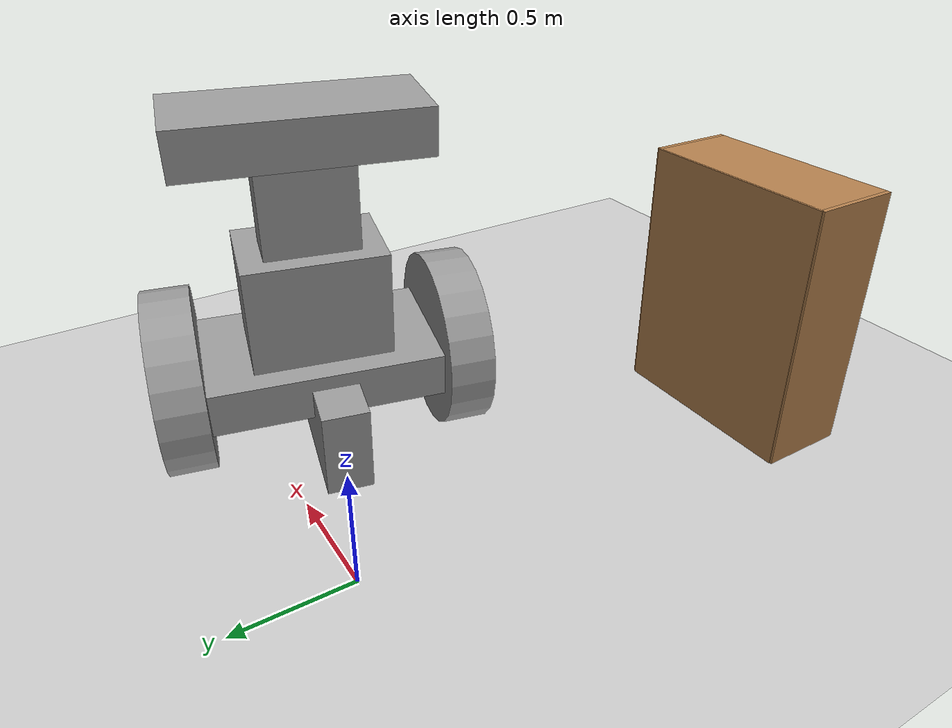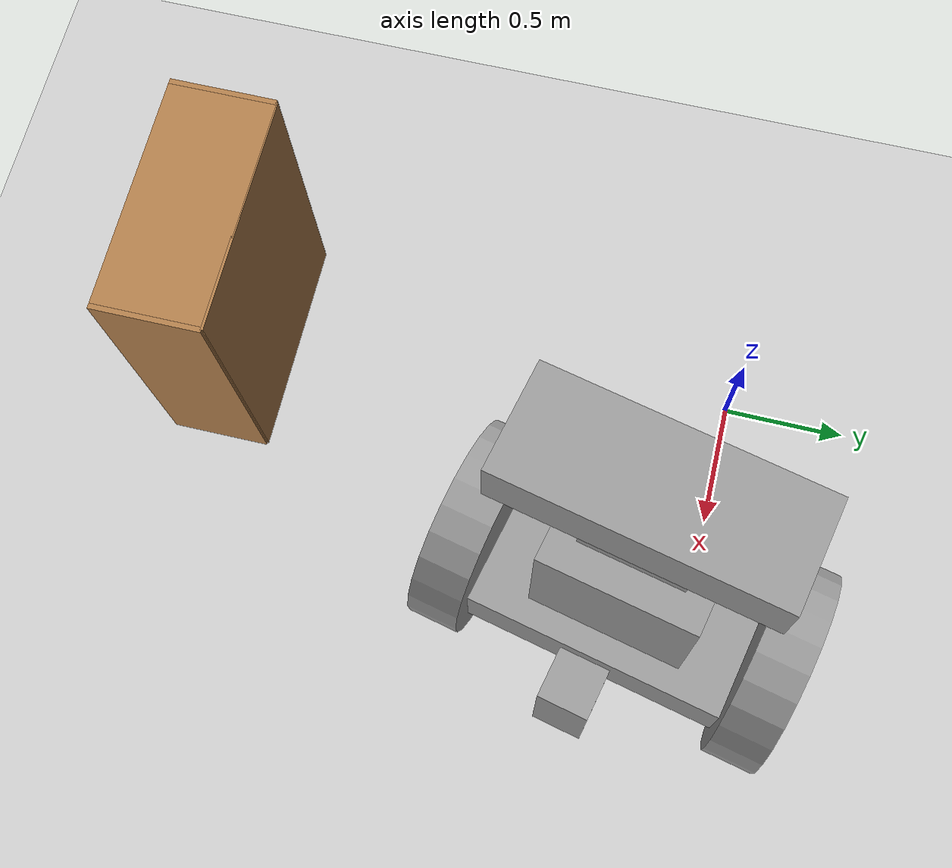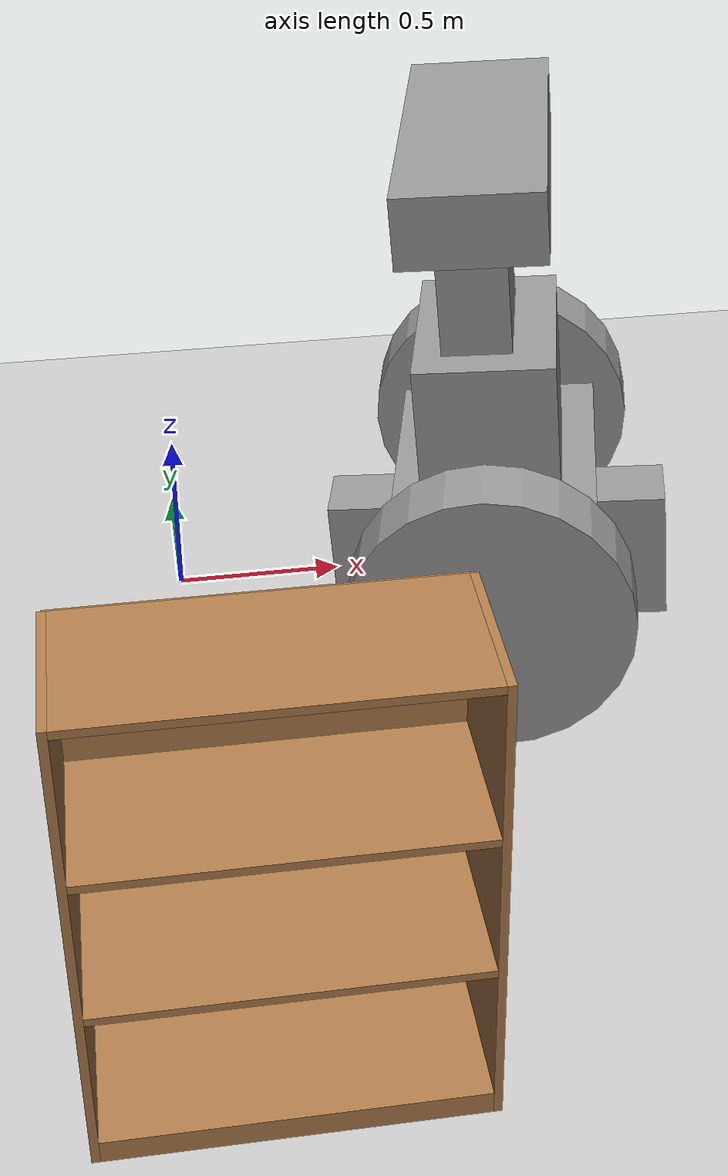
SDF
<sdf version="1.6">
 <world name="default">
  <model name="ground_plane">
   <static>1</static>
   <link name="link">
    <collision name="collision">
     <geometry><plane><normal>0 0 1</normal><size>100 100</size></plane></geometry>
     <surface>
      <contact><collide_bitmask>65535</collide_bitmask></contact>
      <friction><ode><mu>100</mu><mu2>50</mu2></ode></friction>
     </surface>
    </collision>
    <visual name="visual">
     <cast_shadows>0</cast_shadows>
     <geometry><plane><normal>0 0 1</normal><size>100 100</size></plane></geometry>
     <material>
      <script><uri>file://media/materials/scripts/gazebo.material</uri><name>Gazebo/Grey</name></script>
     </material>
    </visual>
   </link>
  </model>
  <model name="robo1_0">
   <link name="link_0">
    <pose>0.431648 -0.223766 0.4 0 -0 0</pose>
    <inertial>
     <mass>1</mass>
     <inertia>
      <ixx>0.166667</ixx>
      <ixy>0</ixy>
      <ixz>0</ixz>
      <iyy>0.166667</iyy>
      <iyz>0</iyz>
      <izz>0.166667</izz>
     </inertia>
    </inertial>
    <visual name="visual">
     <geometry><box><size>0.6 1 0.2</size></box></geometry>
     <material>
      <lighting>1</lighting>
      <script><uri>file://media/materials/scripts/gazebo.material</uri><name>Gazebo/Grey</name></script>
      <shader type="pixel"><normal_map>__default__</normal_map></shader>
      <ambient>0.3 0.3 0.3 1</ambient>
      <diffuse>0.7 0.7 0.7 1</diffuse>
      <specular>0.01 0.01 0.01 1</specular>
      <emissive>0 0 0 1</emissive>
     </material>
    </visual>
    <collision name="collision">
     <geometry><box><size>0.6 1 0.2</size></box></geometry>
     <surface>
      <friction>
       <ode><mu>1</mu><mu2>1</mu2><fdir1>0 0 0</fdir1><slip1>0</slip1><slip2>0</slip2></ode>
       <torsional>
        <coefficient>1</coefficient>
        <patch_radius>0</patch_radius>
        <surface_radius>0</surface_radius>
        <use_patch_radius>1</use_patch_radius>
        <ode><slip>0</slip></ode>
       </torsional>
      </friction>
      <bounce><restitution_coefficient>0</restitution_coefficient><threshold>1e+06</threshold></bounce>
      <contact>
       <collide_without_contact>0</collide_without_contact>
       <collide_without_contact_bitmask>1</collide_without_contact_bitmask>
       <collide_bitmask>1</collide_bitmask>
       <ode>
        <soft_cfm>0</soft_cfm>
        <soft_erp>0.2</soft_erp>
        <kp>1e+13</kp>
        <kd>1</kd>
        <max_vel>0.01</max_vel>
        <min_depth>0</min_depth>
       </ode>
       <bullet>
        <split_impulse>1</split_impulse>
        <split_impulse_penetration_threshold>-0.01</split_impulse_penetration_threshold>
        <soft_cfm>0</soft_cfm>
        <soft_erp>0.2</soft_erp>
        <kp>1e+13</kp>
        <kd>1</kd>
       </bullet>
      </contact>
     </surface>
    </collision>
   </link>
   <link name="link_10">
    <pose>0.431648 -0.223766 1.47714 0 -0 0</pose>
    <inertial>
     <mass>1</mass>
     <inertia>
      <ixx>0.166667</ixx>
      <ixy>0</ixy>
      <ixz>0</ixz>
      <iyy>0.166667</iyy>
      <iyz>0</iyz>
      <izz>0.166667</izz>
     </inertia>
    </inertial>
    <visual name="visual">
     <geometry><box><size>0.4 1 0.2</size></box></geometry>
     <material>
      <lighting>1</lighting>
      <script><uri>file://media/materials/scripts/gazebo.material</uri><name>Gazebo/Grey</name></script>
      <shader type="pixel"><normal_map>__default__</normal_map></shader>
      <ambient>0.3 0.3 0.3 1</ambient>
      <diffuse>0.7 0.7 0.7 1</diffuse>
      <specular>0.01 0.01 0.01 1</specular>
      <emissive>0 0 0 1</emissive>
     </material>
    </visual>
    <collision name="collision">
     <geometry><box><size>0.4 1 0.2</size></box></geometry>
     <surface>
      <friction>
       <ode><mu>1</mu><mu2>1</mu2><fdir1>0 0 0</fdir1><slip1>0</slip1><slip2>0</slip2></ode>
       <torsional>
        <coefficient>1</coefficient>
        <patch_radius>0</patch_radius>
        <surface_radius>0</surface_radius>
        <use_patch_radius>1</use_patch_radius>
        <ode><slip>0</slip></ode>
       </torsional>
      </friction>
      <bounce><restitution_coefficient>0</restitution_coefficient><threshold>1e+06</threshold></bounce>
      <contact>
       <collide_without_contact>0</collide_without_contact>
       <collide_without_contact_bitmask>1</collide_without_contact_bitmask>
       <collide_bitmask>1</collide_bitmask>
       <ode>
        <soft_cfm>0</soft_cfm>
        <soft_erp>0.2</soft_erp>
        <kp>1e+13</kp>
        <kd>1</kd>
        <max_vel>0.01</max_vel>
        <min_depth>0</min_depth>
       </ode>
       <bullet>
        <split_impulse>1</split_impulse>
        <split_impulse_penetration_threshold>-0.01</split_impulse_penetration_threshold>
        <soft_cfm>0</soft_cfm>
        <soft_erp>0.2</soft_erp>
        <kp>1e+13</kp>
        <kd>1</kd>
       </bullet>
      </contact>
     </surface>
    </collision>
   </link>
   <link name="link_2">
    <pose>0.431648 -0.823804 0.4 1.5707 -0 0</pose>
    <inertial>
     <mass>1</mass>
     <inertia><ixx>0.145833</ixx><ixy>0</ixy><ixz>0</ixz><iyy>0.145833</iyy><iyz>0</iyz><izz>0.125</izz></inertia>
    </inertial>
    <visual name="visual">
     <geometry><cylinder><radius>0.4</radius><length>0.2</length></cylinder></geometry>
     <material>
      <lighting>1</lighting>
      <script><uri>file://media/materials/scripts/gazebo.material</uri><name>Gazebo/Grey</name></script>
      <shader type="pixel"><normal_map>__default__</normal_map></shader>
      <ambient>0.3 0.3 0.3 1</ambient>
      <diffuse>0.7 0.7 0.7 1</diffuse>
      <specular>0.01 0.01 0.01 1</specular>
      <emissive>0 0 0 1</emissive>
     </material>
    </visual>
    <collision name="collision">
     <geometry><cylinder><radius>0.4</radius><length>0.2</length></cylinder></geometry>
     <surface>
      <friction>
       <ode><mu>1</mu><mu2>1</mu2><fdir1>0 0 0</fdir1><slip1>0</slip1><slip2>0</slip2></ode>
       <torsional>
        <coefficient>1</coefficient>
        <patch_radius>0</patch_radius>
        <surface_radius>0</surface_radius>
        <use_patch_radius>1</use_patch_radius>
        <ode><slip>0</slip></ode>
       </torsional>
      </friction>
      <bounce><restitution_coefficient>0</restitution_coefficient><threshold>1e+06</threshold></bounce>
      <contact>
       <collide_without_contact>0</collide_without_contact>
       <collide_without_contact_bitmask>1</collide_without_contact_bitmask>
       <collide_bitmask>1</collide_bitmask>
       <ode>
        <soft_cfm>0</soft_cfm>
        <soft_erp>0.2</soft_erp>
        <kp>1e+13</kp>
        <kd>1</kd>
        <max_vel>0.01</max_vel>
        <min_depth>0</min_depth>
       </ode>
       <bullet>
        <split_impulse>1</split_impulse>
        <split_impulse_penetration_threshold>-0.01</split_impulse_penetration_threshold>
        <soft_cfm>0</soft_cfm>
        <soft_erp>0.2</soft_erp>
        <kp>1e+13</kp>
        <kd>1</kd>
       </bullet>
      </contact>
     </surface>
    </collision>
   </link>
   <link name="link_2_clone">
    <pose>0.431648 0.376273 0.4 1.5707 -0 0</pose>
    <inertial>
     <mass>1</mass>
     <inertia><ixx>0.145833</ixx><ixy>0</ixy><ixz>0</ixz><iyy>0.145833</iyy><iyz>0</iyz><izz>0.125</izz></inertia>
    </inertial>
    <visual name="visual">
     <geometry><cylinder><radius>0.4</radius><length>0.2</length></cylinder></geometry>
     <material>
      <lighting>1</lighting>
      <script><uri>file://media/materials/scripts/gazebo.material</uri><name>Gazebo/Grey</name></script>
      <shader type="pixel"><normal_map>__default__</normal_map></shader>
      <ambient>0.3 0.3 0.3 1</ambient>
      <diffuse>0.7 0.7 0.7 1</diffuse>
      <specular>0.01 0.01 0.01 1</specular>
      <emissive>0 0 0 1</emissive>
     </material>
    </visual>
    <collision name="collision">
     <geometry><cylinder><radius>0.4</radius><length>0.2</length></cylinder></geometry>
     <surface>
      <friction>
       <ode><mu>1</mu><mu2>1</mu2><fdir1>0 0 0</fdir1><slip1>0</slip1><slip2>0</slip2></ode>
       <torsional>
        <coefficient>1</coefficient>
        <patch_radius>0</patch_radius>
        <surface_radius>0</surface_radius>
        <use_patch_radius>1</use_patch_radius>
        <ode><slip>0</slip></ode>
       </torsional>
      </friction>
      <bounce><restitution_coefficient>0</restitution_coefficient><threshold>1e+06</threshold></bounce>
      <contact>
       <collide_without_contact>0</collide_without_contact>
       <collide_without_contact_bitmask>1</collide_without_contact_bitmask>
       <collide_bitmask>1</collide_bitmask>
       <ode>
        <soft_cfm>0</soft_cfm>
        <soft_erp>0.2</soft_erp>
        <kp>1e+13</kp>
        <kd>1</kd>
        <max_vel>0.01</max_vel>
        <min_depth>0</min_depth>
       </ode>
       <bullet>
        <split_impulse>1</split_impulse>
        <split_impulse_penetration_threshold>-0.01</split_impulse_penetration_threshold>
        <soft_cfm>0</soft_cfm>
        <soft_erp>0.2</soft_erp>
        <kp>1e+13</kp>
        <kd>1</kd>
       </bullet>
      </contact>
     </surface>
    </collision>
   </link>
   <link name="link_4">
    <pose>0.431648 -0.243766 0.237143 0 -0 0</pose>
    <inertial>
     <mass>1</mass>
     <inertia>
      <ixx>0.166667</ixx>
      <ixy>0</ixy>
      <ixz>0</ixz>
      <iyy>0.166667</iyy>
      <iyz>0</iyz>
      <izz>0.166667</izz>
     </inertia>
    </inertial>
    <visual name="visual">
     <geometry><box><size>1 0.2 0.4</size></box></geometry>
     <material>
      <lighting>1</lighting>
      <script><uri>file://media/materials/scripts/gazebo.material</uri><name>Gazebo/Grey</name></script>
      <shader type="pixel"><normal_map>__default__</normal_map></shader>
      <ambient>0.3 0.3 0.3 1</ambient>
      <diffuse>0.7 0.7 0.7 1</diffuse>
      <specular>0.01 0.01 0.01 1</specular>
      <emissive>0 0 0 1</emissive>
     </material>
    </visual>
    <collision name="collision">
     <geometry><box><size>1 0.2 0.4</size></box></geometry>
     <surface>
      <friction>
       <ode><mu>1</mu><mu2>1</mu2><fdir1>0 0 0</fdir1><slip1>0</slip1><slip2>0</slip2></ode>
       <torsional>
        <coefficient>1</coefficient>
        <patch_radius>0</patch_radius>
        <surface_radius>0</surface_radius>
        <use_patch_radius>1</use_patch_radius>
        <ode><slip>0</slip></ode>
       </torsional>
      </friction>
      <bounce><restitution_coefficient>0</restitution_coefficient><threshold>1e+06</threshold></bounce>
      <contact>
       <collide_without_contact>0</collide_without_contact>
       <collide_without_contact_bitmask>1</collide_without_contact_bitmask>
       <collide_bitmask>1</collide_bitmask>
       <ode>
        <soft_cfm>0</soft_cfm>
        <soft_erp>0.2</soft_erp>
        <kp>1e+13</kp>
        <kd>1</kd>
        <max_vel>0.01</max_vel>
        <min_depth>0</min_depth>
       </ode>
       <bullet>
        <split_impulse>1</split_impulse>
        <split_impulse_penetration_threshold>-0.01</split_impulse_penetration_threshold>
        <soft_cfm>0</soft_cfm>
        <soft_erp>0.2</soft_erp>
        <kp>1e+13</kp>
        <kd>1</kd>
       </bullet>
      </contact>
     </surface>
    </collision>
   </link>
   <link name="link_6">
    <pose>0.431648 -0.223766 0.677143 0 -0 0</pose>
    <inertial>
     <mass>1</mass>
     <inertia>
      <ixx>0.166667</ixx>
      <ixy>0</ixy>
      <ixz>0</ixz>
      <iyy>0.166667</iyy>
      <iyz>0</iyz>
      <izz>0.166667</izz>
     </inertia>
    </inertial>
    <visual name="visual">
     <geometry><box><size>0.4 0.6 0.6</size></box></geometry>
     <material>
      <lighting>1</lighting>
      <script><uri>file://media/materials/scripts/gazebo.material</uri><name>Gazebo/Grey</name></script>
      <shader type="pixel"><normal_map>__default__</normal_map></shader>
      <ambient>0.3 0.3 0.3 1</ambient>
      <diffuse>0.7 0.7 0.7 1</diffuse>
      <specular>0.01 0.01 0.01 1</specular>
      <emissive>0 0 0 1</emissive>
     </material>
    </visual>
    <collision name="collision">
     <geometry><box><size>0.4 0.6 0.6</size></box></geometry>
     <surface>
      <friction>
       <ode><mu>1</mu><mu2>1</mu2><fdir1>0 0 0</fdir1><slip1>0</slip1><slip2>0</slip2></ode>
       <torsional>
        <coefficient>1</coefficient>
        <patch_radius>0</patch_radius>
        <surface_radius>0</surface_radius>
        <use_patch_radius>1</use_patch_radius>
        <ode><slip>0</slip></ode>
       </torsional>
      </friction>
      <bounce><restitution_coefficient>0</restitution_coefficient><threshold>1e+06</threshold></bounce>
      <contact>
       <collide_without_contact>0</collide_without_contact>
       <collide_without_contact_bitmask>1</collide_without_contact_bitmask>
       <collide_bitmask>1</collide_bitmask>
       <ode>
        <soft_cfm>0</soft_cfm>
        <soft_erp>0.2</soft_erp>
        <kp>1e+13</kp>
        <kd>1</kd>
        <max_vel>0.01</max_vel>
        <min_depth>0</min_depth>
       </ode>
       <bullet>
        <split_impulse>1</split_impulse>
        <split_impulse_penetration_threshold>-0.01</split_impulse_penetration_threshold>
        <soft_cfm>0</soft_cfm>
        <soft_erp>0.2</soft_erp>
        <kp>1e+13</kp>
        <kd>1</kd>
       </bullet>
      </contact>
     </surface>
    </collision>
   </link>
   <link name="link_8">
    <pose>0.411648 -0.223766 1.17714 0 -0 0</pose>
    <inertial>
     <mass>1</mass>
     <inertia>
      <ixx>0.166667</ixx>
      <ixy>0</ixy>
      <ixz>0</ixz>
      <iyy>0.166667</iyy>
      <iyz>0</iyz>
      <izz>0.166667</izz>
     </inertia>
    </inertial>
    <visual name="visual">
     <geometry><box><size>0.2 0.4 0.4</size></box></geometry>
     <material>
      <lighting>1</lighting>
      <script><uri>file://media/materials/scripts/gazebo.material</uri><name>Gazebo/Grey</name></script>
      <shader type="pixel"><normal_map>__default__</normal_map></shader>
      <ambient>0.3 0.3 0.3 1</ambient>
      <diffuse>0.7 0.7 0.7 1</diffuse>
      <specular>0.01 0.01 0.01 1</specular>
      <emissive>0 0 0 1</emissive>
     </material>
    </visual>
    <collision name="collision">
     <geometry><box><size>0.2 0.4 0.4</size></box></geometry>
     <surface>
      <friction>
       <ode><mu>1</mu><mu2>1</mu2><fdir1>0 0 0</fdir1><slip1>0</slip1><slip2>0</slip2></ode>
       <torsional>
        <coefficient>1</coefficient>
        <patch_radius>0</patch_radius>
        <surface_radius>0</surface_radius>
        <use_patch_radius>1</use_patch_radius>
        <ode><slip>0</slip></ode>
       </torsional>
      </friction>
      <bounce><restitution_coefficient>0</restitution_coefficient><threshold>1e+06</threshold></bounce>
      <contact>
       <collide_without_contact>0</collide_without_contact>
       <collide_without_contact_bitmask>1</collide_without_contact_bitmask>
       <collide_bitmask>1</collide_bitmask>
       <ode>
        <soft_cfm>0</soft_cfm>
        <soft_erp>0.2</soft_erp>
        <kp>1e+13</kp>
        <kd>1</kd>
        <max_vel>0.01</max_vel>
        <min_depth>0</min_depth>
       </ode>
       <bullet>
        <split_impulse>1</split_impulse>
        <split_impulse_penetration_threshold>-0.01</split_impulse_penetration_threshold>
        <soft_cfm>0</soft_cfm>
        <soft_erp>0.2</soft_erp>
        <kp>1e+13</kp>
        <kd>1</kd>
       </bullet>
      </contact>
     </surface>
    </collision>
   </link>
   <joint name="link_0_JOINT_0_0" type="fixed">
    <parent>link_0</parent>
    <child>link_4</child>
    <physics>
     <ode><limit><cfm>0</cfm><erp>0.2</erp></limit><suspension><cfm>0</cfm><erp>0.2</erp></suspension></ode>
    </physics>
   </joint>
   <joint name="link_0_JOINT_0" type="revolute">
    <parent>link_0</parent>
    <child>link_2</child>
    <axis>
     <xyz>0 0 1</xyz>
     <use_parent_model_frame>0</use_parent_model_frame>
     <limit>
      <lower>-1.79769e+308</lower>
      <upper>1.79769e+308</upper>
      <effort>-1</effort>
      <velocity>-1</velocity>
     </limit>
     <dynamics>
      <spring_reference>0</spring_reference>
      <spring_stiffness>0</spring_stiffness>
      <damping>0</damping>
      <friction>0</friction>
     </dynamics>
    </axis>
    <physics>
     <ode><limit><cfm>0</cfm><erp>0.2</erp></limit><suspension><cfm>0</cfm><erp>0.2</erp></suspension></ode>
    </physics>
   </joint>
   <joint name="link_0_JOINT_1" type="revolute">
    <parent>link_0</parent>
    <child>link_2_clone</child>
    <axis>
     <xyz>0 0 1</xyz>
     <use_parent_model_frame>0</use_parent_model_frame>
     <limit>
      <lower>-1.79769e+308</lower>
      <upper>1.79769e+308</upper>
      <effort>-1</effort>
      <velocity>-1</velocity>
     </limit>
     <dynamics>
      <spring_reference>0</spring_reference>
      <spring_stiffness>0</spring_stiffness>
      <damping>0</damping>
      <friction>0</friction>
     </dynamics>
    </axis>
    <physics>
     <ode><limit><cfm>0</cfm><erp>0.2</erp></limit><suspension><cfm>0</cfm><erp>0.2</erp></suspension></ode>
    </physics>
   </joint>
   <joint name="link_0_JOINT_2" type="fixed">
    <parent>link_0</parent>
    <child>link_4</child>
    <physics>
     <ode><limit><cfm>0</cfm><erp>0.2</erp></limit><suspension><cfm>0</cfm><erp>0.2</erp></suspension></ode>
    </physics>
   </joint>
   <joint name="link_0_JOINT_3" type="fixed">
    <parent>link_0</parent>
    <child>link_6</child>
    <physics>
     <ode><limit><cfm>0</cfm><erp>0.2</erp></limit><suspension><cfm>0</cfm><erp>0.2</erp></suspension></ode>
    </physics>
   </joint>
   <joint name="link_6_JOINT_4" type="fixed">
    <parent>link_6</parent>
    <child>link_8</child>
    <physics>
     <ode><limit><cfm>0</cfm><erp>0.2</erp></limit><suspension><cfm>0</cfm><erp>0.2</erp></suspension></ode>
    </physics>
   </joint>
   <joint name="link_8_JOINT_5" type="fixed">
    <parent>link_8</parent>
    <child>link_10</child>
    <physics>
     <ode><limit><cfm>0</cfm><erp>0.2</erp></limit><suspension><cfm>0</cfm><erp>0.2</erp></suspension></ode>
    </physics>
   </joint>
   <static>0</static>
   <pose>0.615239 0.022726 -0.031809 0 -0.076498 -0.222392</pose>
  </model>
  <model name="bookshelf">
   <static>1</static>
   <link name="link">
    <inertial><mass>1</mass></inertial>
    <collision name="back">
     <pose>0 0.005 0.6 0 -0 0</pose>
     <geometry><box><size>0.9 0.01 1.2</size></box></geometry>
    </collision>
    <visual name="visual1">
     <pose>0 0.005 0.6 0 -0 0</pose>
     <geometry><box><size>0.9 0.01 1.2</size></box></geometry>
     <material>
      <script><uri>file://media/materials/scripts/gazebo.material</uri><name>Gazebo/Wood</name></script>
     </material>
    </visual>
    <collision name="left_side">
     <pose>0.45 -0.195 0.6 0 -0 0</pose>
     <geometry><box><size>0.02 0.4 1.2</size></box></geometry>
    </collision>
    <visual name="visual2">
     <pose>0.45 -0.195 0.6 0 -0 0</pose>
     <geometry><box><size>0.02 0.4 1.2</size></box></geometry>
     <material>
      <script><uri>file://media/materials/scripts/gazebo.material</uri><name>Gazebo/Wood</name></script>
     </material>
    </visual>
    <collision name="right_side">
     <pose>-0.45 -0.195 0.6 0 -0 0</pose>
     <geometry><box><size>0.02 0.4 1.2</size></box></geometry>
    </collision>
    <visual name="visual3">
     <pose>-0.45 -0.195 0.6 0 -0 0</pose>
     <geometry><box><size>0.02 0.4 1.2</size></box></geometry>
     <material>
      <script><uri>file://media/materials/scripts/gazebo.material</uri><name>Gazebo/Wood</name></script>
     </material>
    </visual>
    <collision name="bottom">
     <pose>0 -0.195 0.03 0 -0 0</pose>
     <geometry><box><size>0.88 0.4 0.06</size></box></geometry>
    </collision>
    <visual name="visual4">
     <pose>0 -0.195 0.03 0 -0 0</pose>
     <geometry><box><size>0.88 0.4 0.06</size></box></geometry>
     <material>
      <script><uri>file://media/materials/scripts/gazebo.material</uri><name>Gazebo/Wood</name></script>
     </material>
    </visual>
    <collision name="top">
     <pose>0 -0.195 1.19 0 -0 0</pose>
     <geometry><box><size>0.88 0.4 0.02</size></box></geometry>
    </collision>
    <visual name="visual5">
     <pose>0 -0.195 1.19 0 -0 0</pose>
     <geometry><box><size>0.88 0.4 0.02</size></box></geometry>
     <material>
      <script><uri>file://media/materials/scripts/gazebo.material</uri><name>Gazebo/Wood</name></script>
     </material>
    </visual>
    <collision name="low_shelf">
     <pose>0 -0.195 0.43 0 -0 0</pose>
     <geometry><box><size>0.88 0.4 0.02</size></box></geometry>
    </collision>
    <visual name="visual6">
     <pose>0 -0.195 0.43 0 -0 0</pose>
     <geometry><box><size>0.88 0.4 0.02</size></box></geometry>
     <material>
      <script><uri>file://media/materials/scripts/gazebo.material</uri><name>Gazebo/Wood</name></script>
     </material>
    </visual>
    <collision name="high_shelf">
     <pose>0 -0.195 0.8 0 -0 0</pose>
     <geometry><box><size>0.88 0.4 0.02</size></box></geometry>
    </collision>
    <visual name="visual7">
     <pose>0 -0.195 0.8 0 -0 0</pose>
     <geometry><box><size>0.88 0.4 0.02</size></box></geometry>
     <material>
      <script><uri>file://media/materials/scripts/gazebo.material</uri><name>Gazebo/Wood</name></script>
     </material>
    </visual>
   </link>
   <pose>0.122089 -1.86637 0 0 -0 0</pose>
  </model>
 </world>
</sdf>
